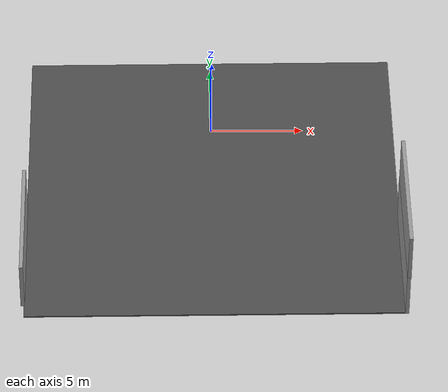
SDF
<sdf version="1.6">
 <world name="default">
  <model name="asphalt_plane">
   <static>1</static>
   <link name="link">
    <collision name="collision"><geometry><box><size>20 20 0.1</size></box></geometry></collision>
    <visual name="visual">
     <cast_shadows>0</cast_shadows>
     <geometry><box><size>20 20 0.1</size></box></geometry>
     <material>
      <script>
       <uri>model://asphalt_plane/materials/scripts</uri>
       <uri>model://asphalt_plane/materials/textures</uri>
       <name>vrc/asphalt</name>
      </script>
     </material>
    </visual>
   </link>
   <pose>0.016282 -4.35292 0 0 -0 0</pose>
  </model>
  <model name="ground_plane">
   <static>1</static>
   <link name="link">
    <collision name="collision">
     <geometry><plane><normal>0 0 1</normal><size>100 100</size></plane></geometry>
     <surface>
      <contact><collide_bitmask>65535</collide_bitmask></contact>
      <friction><ode><mu>100</mu><mu2>50</mu2></ode></friction>
     </surface>
    </collision>
    <visual name="visual">
     <cast_shadows>0</cast_shadows>
     <geometry><plane><normal>0 0 1</normal><size>100 100</size></plane></geometry>
     <material>
      <script><uri>file://media/materials/scripts/gazebo.material</uri><name>Gazebo/Grey</name></script>
     </material>
    </visual>
   </link>
   <pose>-1.27431 2.91806 0 0 -0 0</pose>
  </model>
  <model name="grey_wall">
   <static>1</static>
   <link name="link">
    <pose>0 0 1.4 0 -0 0</pose>
    <collision name="collision"><geometry><box><size>7.5 0.2 2.8</size></box></geometry></collision>
    <visual name="visual">
     <cast_shadows>0</cast_shadows>
     <geometry><box><size>7.5 0.2 2.8</size></box></geometry>
     <material>
      <script>
       <uri>model://grey_wall/materials/scripts</uri>
       <uri>model://grey_wall/materials/textures</uri>
       <name>vrc/grey_wall</name>
      </script>
     </material>
    </visual>
   </link>
   <pose>-10.0517 -9.79742 0 0 -0 1.5731</pose>
  </model>
  <model name="grey_wall_clone_2">
   <static>1</static>
   <link name="link">
    <pose>0 0 1.4 0 -0 0</pose>
    <collision name="collision"><geometry><box><size>7.5 0.2 2.8</size></box></geometry></collision>
    <visual name="visual">
     <cast_shadows>0</cast_shadows>
     <geometry><box><size>7.5 0.2 2.8</size></box></geometry>
     <material>
      <script>
       <uri>model://grey_wall/materials/scripts</uri>
       <uri>model://grey_wall/materials/textures</uri>
       <name>vrc/grey_wall</name>
      </script>
     </material>
    </visual>
   </link>
   <pose>10.0233 -10.6229 0 0 -0 1.5731</pose>
  </model>
  <model name="grey_wall_clone_2_clone">
   <static>1</static>
   <link name="link">
    <pose>0 0 1.4 0 -0 0</pose>
    <collision name="collision"><geometry><box><size>7.5 0.2 2.8</size></box></geometry></collision>
    <visual name="visual">
     <cast_shadows>0</cast_shadows>
     <geometry><box><size>7.5 0.2 2.8</size></box></geometry>
     <material>
      <script>
       <uri>model://grey_wall/materials/scripts</uri>
       <uri>model://grey_wall/materials/textures</uri>
       <name>vrc/grey_wall</name>
      </script>
     </material>
    </visual>
   </link>
   <pose>10.023 -10.8574 2.80072 0 -0 1.5731</pose>
  </model>
 </world>
</sdf>
